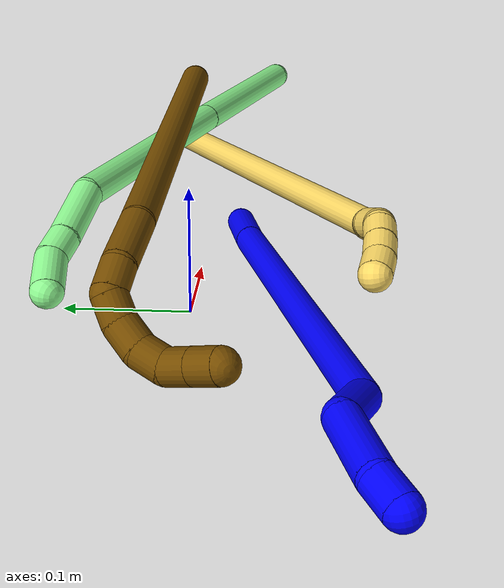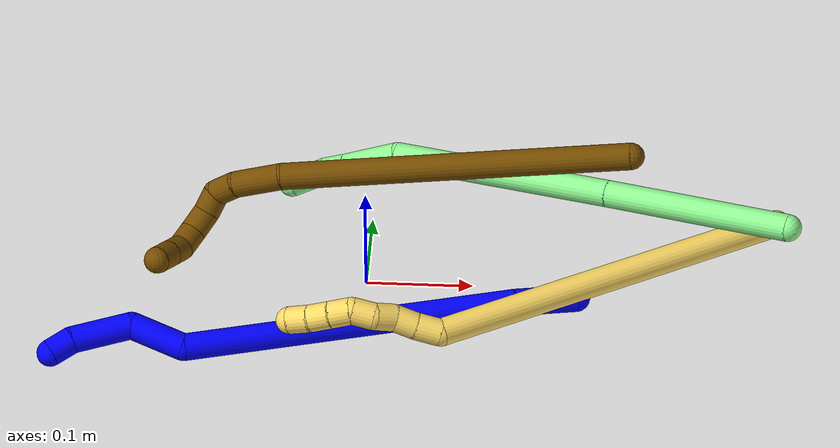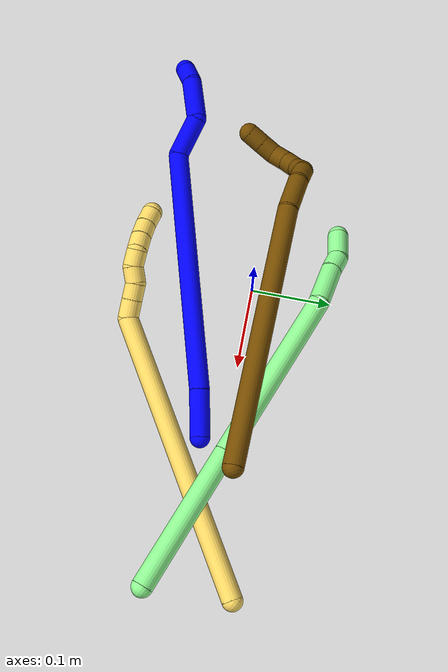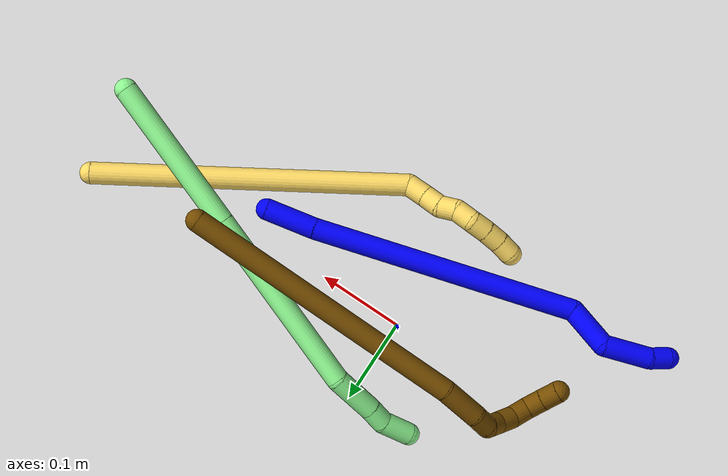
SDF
<sdf version="1.7">
 <world name="default">
  <model name="1">
   <static>0</static>
   <link name="1">
    <collision name="collision-cylinder-e_1_1_4">
     <pose>-0.028838 -0.005024 -0.002422 2.01999 -1.37977 -1.84038</pose>
     <geometry><cylinder><radius>0.0125</radius><length>0.058745</length></cylinder></geometry>
     <surface>
      <friction><ode><mu>1.16</mu><mu2>1.16</mu2><slip1>0</slip1><slip2>0</slip2></ode></friction>
      <contact><ode><kp>1e+06</kp><kd>1</kd><max_vel>0</max_vel><min_depth>0.001</min_depth></ode></contact>
     </surface>
    </collision>
    <visual name="visual-cylinder-e_1_1_4">
     <pose>-0.028838 -0.005024 -0.002422 2.01999 -1.37977 -1.84038</pose>
     <geometry><cylinder><radius>0.0125</radius><length>0.058745</length></cylinder></geometry>
     <material><ambient>0 0 1 1</ambient></material>
    </visual>
    <collision name="collision-cylinder-e_2_4_5">
     <pose>-0.206886 -0.047289 -0.023859 2.04288 -1.29756 -1.78314</pose>
     <geometry><cylinder><radius>0.0125</radius><length>0.309917</length></cylinder></geometry>
     <surface>
      <friction><ode><mu>1.16</mu><mu2>1.16</mu2><slip1>0</slip1><slip2>0</slip2></ode></friction>
      <contact><ode><kp>1e+06</kp><kd>1</kd><max_vel>0</max_vel><min_depth>0.001</min_depth></ode></contact>
     </surface>
    </collision>
    <visual name="visual-cylinder-e_2_4_5">
     <pose>-0.206886 -0.047289 -0.023859 2.04288 -1.29756 -1.78314</pose>
     <geometry><cylinder><radius>0.0125</radius><length>0.309917</length></cylinder></geometry>
     <material><ambient>0 0 1 1</ambient></material>
    </visual>
    <collision name="collision-cylinder-e_3_5_6">
     <pose>-0.380728 -0.078286 -0.036719 -0.792684 -1.22877 0.574147</pose>
     <geometry><cylinder><radius>0.0125</radius><length>0.052293</length></cylinder></geometry>
     <surface>
      <friction><ode><mu>1.16</mu><mu2>1.16</mu2><slip1>0</slip1><slip2>0</slip2></ode></friction>
      <contact><ode><kp>1e+06</kp><kd>1</kd><max_vel>0</max_vel><min_depth>0.001</min_depth></ode></contact>
     </surface>
    </collision>
    <visual name="visual-cylinder-e_3_5_6">
     <pose>-0.380728 -0.078286 -0.036719 -0.792684 -1.22877 0.574147</pose>
     <geometry><cylinder><radius>0.0125</radius><length>0.052293</length></cylinder></geometry>
     <material><ambient>0 0 1 1</ambient></material>
    </visual>
    <collision name="collision-cylinder-e_4_6_7">
     <pose>-0.431732 -0.078714 -0.037089 2.34496 -1.23061 -2.06762</pose>
     <geometry><cylinder><radius>0.0125</radius><length>0.055951</length></cylinder></geometry>
     <surface>
      <friction><ode><mu>1.16</mu><mu2>1.16</mu2><slip1>0</slip1><slip2>0</slip2></ode></friction>
      <contact><ode><kp>1e+06</kp><kd>1</kd><max_vel>0</max_vel><min_depth>0.001</min_depth></ode></contact>
     </surface>
    </collision>
    <visual name="visual-cylinder-e_4_6_7">
     <pose>-0.431732 -0.078714 -0.037089 2.34496 -1.23061 -2.06762</pose>
     <geometry><cylinder><radius>0.0125</radius><length>0.055951</length></cylinder></geometry>
     <material><ambient>0 0 1 1</ambient></material>
    </visual>
    <collision name="collision-cylinder-e_5_7_2">
     <pose>-0.46726 -0.090133 -0.04881 2.40143 -0.915582 -1.80755</pose>
     <geometry><cylinder><radius>0.0125</radius><length>0.023094</length></cylinder></geometry>
     <surface>
      <friction><ode><mu>1.16</mu><mu2>1.16</mu2><slip1>0</slip1><slip2>0</slip2></ode></friction>
      <contact><ode><kp>1e+06</kp><kd>1</kd><max_vel>0</max_vel><min_depth>0.001</min_depth></ode></contact>
     </surface>
    </collision>
    <visual name="visual-cylinder-e_5_7_2">
     <pose>-0.46726 -0.090133 -0.04881 2.40143 -0.915582 -1.80755</pose>
     <geometry><cylinder><radius>0.0125</radius><length>0.023094</length></cylinder></geometry>
     <material><ambient>0 0 1 1</ambient></material>
    </visual>
    <collision name="collision-sphere-2">
     <pose>-0.476416 -0.094878 -0.054005 0 -0 0</pose>
     <geometry><sphere><radius>0.0125</radius></sphere></geometry>
     <surface>
      <friction><ode><mu>1.16</mu><mu2>1.16</mu2><slip1>0</slip1><slip2>0</slip2></ode></friction>
      <contact><ode><kp>1e+06</kp><kd>1</kd><max_vel>0</max_vel><min_depth>0.001</min_depth></ode></contact>
     </surface>
    </collision>
    <visual name="visual-sphere-2">
     <pose>-0.476416 -0.094878 -0.054005 0 -0 0</pose>
     <geometry><sphere><radius>0.0125</radius></sphere></geometry>
     <material><ambient>0 0 1 1</ambient></material>
    </visual>
    <collision name="collision-sphere-7">
     <pose>-0.458105 -0.085388 -0.043615 0 -0 0</pose>
     <geometry><sphere><radius>0.0125</radius></sphere></geometry>
     <surface>
      <friction><ode><mu>1.16</mu><mu2>1.16</mu2><slip1>0</slip1><slip2>0</slip2></ode></friction>
      <contact><ode><kp>1e+06</kp><kd>1</kd><max_vel>0</max_vel><min_depth>0.001</min_depth></ode></contact>
     </surface>
    </collision>
    <visual name="visual-sphere-7">
     <pose>-0.458105 -0.085388 -0.043615 0 -0 0</pose>
     <geometry><sphere><radius>0.0125</radius></sphere></geometry>
     <material><ambient>0 0 1 1</ambient></material>
    </visual>
    <collision name="collision-sphere-6">
     <pose>-0.40536 -0.072039 -0.030563 0 -0 0</pose>
     <geometry><sphere><radius>0.0125</radius></sphere></geometry>
     <surface>
      <friction><ode><mu>1.16</mu><mu2>1.16</mu2><slip1>0</slip1><slip2>0</slip2></ode></friction>
      <contact><ode><kp>1e+06</kp><kd>1</kd><max_vel>0</max_vel><min_depth>0.001</min_depth></ode></contact>
     </surface>
    </collision>
    <visual name="visual-sphere-6">
     <pose>-0.40536 -0.072039 -0.030563 0 -0 0</pose>
     <geometry><sphere><radius>0.0125</radius></sphere></geometry>
     <material><ambient>0 0 1 1</ambient></material>
    </visual>
    <collision name="collision-sphere-5">
     <pose>-0.356096 -0.084532 -0.042875 0 -0 0</pose>
     <geometry><sphere><radius>0.0125</radius></sphere></geometry>
     <surface>
      <friction><ode><mu>1.16</mu><mu2>1.16</mu2><slip1>0</slip1><slip2>0</slip2></ode></friction>
      <contact><ode><kp>1e+06</kp><kd>1</kd><max_vel>0</max_vel><min_depth>0.001</min_depth></ode></contact>
     </surface>
    </collision>
    <visual name="visual-sphere-5">
     <pose>-0.356096 -0.084532 -0.042875 0 -0 0</pose>
     <geometry><sphere><radius>0.0125</radius></sphere></geometry>
     <material><ambient>0 0 1 1</ambient></material>
    </visual>
    <collision name="collision-sphere-1">
     <geometry><sphere><radius>0.0125</radius></sphere></geometry>
     <surface>
      <friction><ode><mu>1.16</mu><mu2>1.16</mu2><slip1>0</slip1><slip2>0</slip2></ode></friction>
      <contact><ode><kp>1e+06</kp><kd>1</kd><max_vel>0</max_vel><min_depth>0.001</min_depth></ode></contact>
     </surface>
    </collision>
    <visual name="visual-sphere-1">
     <geometry><sphere><radius>0.0125</radius></sphere></geometry>
     <material><ambient>0 0 1 1</ambient></material>
    </visual>
    <collision name="collision-sphere-4">
     <pose>-0.057677 -0.010047 -0.004843 0 -0 0</pose>
     <geometry><sphere><radius>0.0125</radius></sphere></geometry>
     <surface>
      <friction><ode><mu>1.16</mu><mu2>1.16</mu2><slip1>0</slip1><slip2>0</slip2></ode></friction>
      <contact><ode><kp>1e+06</kp><kd>1</kd><max_vel>0</max_vel><min_depth>0.001</min_depth></ode></contact>
     </surface>
    </collision>
    <visual name="visual-sphere-4">
     <pose>-0.057677 -0.010047 -0.004843 0 -0 0</pose>
     <geometry><sphere><radius>0.0125</radius></sphere></geometry>
     <material><ambient>0 0 1 1</ambient></material>
    </visual>
    <inertial>
     <pose>-0.241336 -0.051061 -0.025318 0 -0 0</pose>
     <mass>0.5</mass>
     <inertia>
      <ixx>-0.000844</ixx>
      <ixy>0</ixy>
      <ixz>0</ixz>
      <iyy>0.001705</iyy>
      <iyz>0</iyz>
      <izz>0.003049</izz>
     </inertia>
    </inertial>
   </link>
   <pose>0.197249 -0.028696 0.011488 -0.254847 0.059435 0.009468</pose>
  </model>
  <model name="5">
   <static>0</static>
   <link name="5">
    <collision name="collision-cylinder-e_1_1_4">
     <pose>-0.075916 -0.062741 0.14799 0.400985 -0.441233 -0.091089</pose>
     <geometry><cylinder><radius>0.0125</radius><length>0.355532</length></cylinder></geometry>
     <surface>
      <friction><ode><mu>1.16</mu><mu2>1.16</mu2><slip1>0</slip1><slip2>0</slip2></ode></friction>
      <contact><ode><kp>1e+06</kp><kd>1</kd><max_vel>0</max_vel><min_depth>0.001</min_depth></ode></contact>
     </surface>
    </collision>
    <visual name="visual-cylinder-e_1_1_4">
     <pose>-0.075916 -0.062741 0.14799 0.400985 -0.441233 -0.091089</pose>
     <geometry><cylinder><radius>0.0125</radius><length>0.355532</length></cylinder></geometry>
     <material><ambient>1 0.858824 0.4 1</ambient></material>
    </visual>
    <collision name="collision-cylinder-e_2_4_5">
     <pose>-0.162081 -0.127347 0.301387 0.33208 -1.06183 -0.19616</pose>
     <geometry><cylinder><radius>0.0125</radius><length>0.023475</length></cylinder></geometry>
     <surface>
      <friction><ode><mu>1.16</mu><mu2>1.16</mu2><slip1>0</slip1><slip2>0</slip2></ode></friction>
      <contact><ode><kp>1e+06</kp><kd>1</kd><max_vel>0</max_vel><min_depth>0.001</min_depth></ode></contact>
     </surface>
    </collision>
    <visual name="visual-cylinder-e_2_4_5">
     <pose>-0.162081 -0.127347 0.301387 0.33208 -1.06183 -0.19616</pose>
     <geometry><cylinder><radius>0.0125</radius><length>0.023475</length></cylinder></geometry>
     <material><ambient>1 0.858824 0.4 1</ambient></material>
    </visual>
    <collision name="collision-cylinder-e_3_5_6">
     <pose>-0.181593 -0.129681 0.311354 0.102504 -1.11117 -0.06367</pose>
     <geometry><cylinder><radius>0.0125</radius><length>0.020668</length></cylinder></geometry>
     <surface>
      <friction><ode><mu>1.16</mu><mu2>1.16</mu2><slip1>0</slip1><slip2>0</slip2></ode></friction>
      <contact><ode><kp>1e+06</kp><kd>1</kd><max_vel>0</max_vel><min_depth>0.001</min_depth></ode></contact>
     </surface>
    </collision>
    <visual name="visual-cylinder-e_3_5_6">
     <pose>-0.181593 -0.129681 0.311354 0.102504 -1.11117 -0.06367</pose>
     <geometry><cylinder><radius>0.0125</radius><length>0.020668</length></cylinder></geometry>
     <material><ambient>1 0.858824 0.4 1</ambient></material>
    </visual>
    <collision name="collision-cylinder-e_4_6_7">
     <pose>-0.197425 -0.131283 0.323372 0.150854 -0.716637 -0.056585</pose>
     <geometry><cylinder><radius>0.0125</radius><length>0.020007</length></cylinder></geometry>
     <surface>
      <friction><ode><mu>1.16</mu><mu2>1.16</mu2><slip1>0</slip1><slip2>0</slip2></ode></friction>
      <contact><ode><kp>1e+06</kp><kd>1</kd><max_vel>0</max_vel><min_depth>0.001</min_depth></ode></contact>
     </surface>
    </collision>
    <visual name="visual-cylinder-e_4_6_7">
     <pose>-0.197425 -0.131283 0.323372 0.150854 -0.716637 -0.056585</pose>
     <geometry><cylinder><radius>0.0125</radius><length>0.020007</length></cylinder></geometry>
     <material><ambient>1 0.858824 0.4 1</ambient></material>
    </visual>
    <collision name="collision-cylinder-e_5_7_8">
     <pose>-0.212958 -0.134367 0.335165 0.422698 -1.08302 -0.256683</pose>
     <geometry><cylinder><radius>0.0125</radius><length>0.02029</length></cylinder></geometry>
     <surface>
      <friction><ode><mu>1.16</mu><mu2>1.16</mu2><slip1>0</slip1><slip2>0</slip2></ode></friction>
      <contact><ode><kp>1e+06</kp><kd>1</kd><max_vel>0</max_vel><min_depth>0.001</min_depth></ode></contact>
     </surface>
    </collision>
    <visual name="visual-cylinder-e_5_7_8">
     <pose>-0.212958 -0.134367 0.335165 0.422698 -1.08302 -0.256683</pose>
     <geometry><cylinder><radius>0.0125</radius><length>0.02029</length></cylinder></geometry>
     <material><ambient>1 0.858824 0.4 1</ambient></material>
    </visual>
    <collision name="collision-cylinder-e_6_8_9">
     <pose>-0.228675 -0.142849 0.342963 1.08348 -0.740424 -0.458896</pose>
     <geometry><cylinder><radius>0.0125</radius><length>0.020027</length></cylinder></geometry>
     <surface>
      <friction><ode><mu>1.16</mu><mu2>1.16</mu2><slip1>0</slip1><slip2>0</slip2></ode></friction>
      <contact><ode><kp>1e+06</kp><kd>1</kd><max_vel>0</max_vel><min_depth>0.001</min_depth></ode></contact>
     </surface>
    </collision>
    <visual name="visual-cylinder-e_6_8_9">
     <pose>-0.228675 -0.142849 0.342963 1.08348 -0.740424 -0.458896</pose>
     <geometry><cylinder><radius>0.0125</radius><length>0.020027</length></cylinder></geometry>
     <material><ambient>1 0.858824 0.4 1</ambient></material>
    </visual>
    <collision name="collision-cylinder-e_7_9_10">
     <pose>-0.24223 -0.156147 0.349247 1.17555 -0.747785 -0.511425</pose>
     <geometry><cylinder><radius>0.0125</radius><length>0.02</length></cylinder></geometry>
     <surface>
      <friction><ode><mu>1.16</mu><mu2>1.16</mu2><slip1>0</slip1><slip2>0</slip2></ode></friction>
      <contact><ode><kp>1e+06</kp><kd>1</kd><max_vel>0</max_vel><min_depth>0.001</min_depth></ode></contact>
     </surface>
    </collision>
    <visual name="visual-cylinder-e_7_9_10">
     <pose>-0.24223 -0.156147 0.349247 1.17555 -0.747785 -0.511425</pose>
     <geometry><cylinder><radius>0.0125</radius><length>0.02</length></cylinder></geometry>
     <material><ambient>1 0.858824 0.4 1</ambient></material>
    </visual>
    <collision name="collision-cylinder-e_8_10_2">
     <pose>-0.256444 -0.169345 0.353987 1.28113 -0.835091 -0.638744</pose>
     <geometry><cylinder><radius>0.0125</radius><length>0.020001</length></cylinder></geometry>
     <surface>
      <friction><ode><mu>1.16</mu><mu2>1.16</mu2><slip1>0</slip1><slip2>0</slip2></ode></friction>
      <contact><ode><kp>1e+06</kp><kd>1</kd><max_vel>0</max_vel><min_depth>0.001</min_depth></ode></contact>
     </surface>
    </collision>
    <visual name="visual-cylinder-e_8_10_2">
     <pose>-0.256444 -0.169345 0.353987 1.28113 -0.835091 -0.638744</pose>
     <geometry><cylinder><radius>0.0125</radius><length>0.020001</length></cylinder></geometry>
     <material><ambient>1 0.858824 0.4 1</ambient></material>
    </visual>
    <collision name="collision-sphere-2">
     <pose>-0.263858 -0.175777 0.355904 0 -0 0</pose>
     <geometry><sphere><radius>0.0125</radius></sphere></geometry>
     <surface>
      <friction><ode><mu>1.16</mu><mu2>1.16</mu2><slip1>0</slip1><slip2>0</slip2></ode></friction>
      <contact><ode><kp>1e+06</kp><kd>1</kd><max_vel>0</max_vel><min_depth>0.001</min_depth></ode></contact>
     </surface>
    </collision>
    <visual name="visual-sphere-2">
     <pose>-0.263858 -0.175777 0.355904 0 -0 0</pose>
     <geometry><sphere><radius>0.0125</radius></sphere></geometry>
     <material><ambient>1 0.858824 0.4 1</ambient></material>
    </visual>
    <collision name="collision-sphere-10">
     <pose>-0.24903 -0.162914 0.35207 0 -0 0</pose>
     <geometry><sphere><radius>0.0125</radius></sphere></geometry>
     <surface>
      <friction><ode><mu>1.16</mu><mu2>1.16</mu2><slip1>0</slip1><slip2>0</slip2></ode></friction>
      <contact><ode><kp>1e+06</kp><kd>1</kd><max_vel>0</max_vel><min_depth>0.001</min_depth></ode></contact>
     </surface>
    </collision>
    <visual name="visual-sphere-10">
     <pose>-0.24903 -0.162914 0.35207 0 -0 0</pose>
     <geometry><sphere><radius>0.0125</radius></sphere></geometry>
     <material><ambient>1 0.858824 0.4 1</ambient></material>
    </visual>
    <collision name="collision-sphere-9">
     <pose>-0.23543 -0.14938 0.346424 0 -0 0</pose>
     <geometry><sphere><radius>0.0125</radius></sphere></geometry>
     <surface>
      <friction><ode><mu>1.16</mu><mu2>1.16</mu2><slip1>0</slip1><slip2>0</slip2></ode></friction>
      <contact><ode><kp>1e+06</kp><kd>1</kd><max_vel>0</max_vel><min_depth>0.001</min_depth></ode></contact>
     </surface>
    </collision>
    <visual name="visual-sphere-9">
     <pose>-0.23543 -0.14938 0.346424 0 -0 0</pose>
     <geometry><sphere><radius>0.0125</radius></sphere></geometry>
     <material><ambient>1 0.858824 0.4 1</ambient></material>
    </visual>
    <collision name="collision-sphere-4">
     <pose>-0.151832 -0.125482 0.295981 0 -0 0</pose>
     <geometry><sphere><radius>0.0125</radius></sphere></geometry>
     <surface>
      <friction><ode><mu>1.16</mu><mu2>1.16</mu2><slip1>0</slip1><slip2>0</slip2></ode></friction>
      <contact><ode><kp>1e+06</kp><kd>1</kd><max_vel>0</max_vel><min_depth>0.001</min_depth></ode></contact>
     </surface>
    </collision>
    <visual name="visual-sphere-4">
     <pose>-0.151832 -0.125482 0.295981 0 -0 0</pose>
     <geometry><sphere><radius>0.0125</radius></sphere></geometry>
     <material><ambient>1 0.858824 0.4 1</ambient></material>
    </visual>
    <collision name="collision-sphere-1">
     <geometry><sphere><radius>0.0125</radius></sphere></geometry>
     <surface>
      <friction><ode><mu>1.16</mu><mu2>1.16</mu2><slip1>0</slip1><slip2>0</slip2></ode></friction>
      <contact><ode><kp>1e+06</kp><kd>1</kd><max_vel>0</max_vel><min_depth>0.001</min_depth></ode></contact>
     </surface>
    </collision>
    <visual name="visual-sphere-1">
     <geometry><sphere><radius>0.0125</radius></sphere></geometry>
     <material><ambient>1 0.858824 0.4 1</ambient></material>
    </visual>
    <collision name="collision-sphere-8">
     <pose>-0.22192 -0.136318 0.339501 0 -0 0</pose>
     <geometry><sphere><radius>0.0125</radius></sphere></geometry>
     <surface>
      <friction><ode><mu>1.16</mu><mu2>1.16</mu2><slip1>0</slip1><slip2>0</slip2></ode></friction>
      <contact><ode><kp>1e+06</kp><kd>1</kd><max_vel>0</max_vel><min_depth>0.001</min_depth></ode></contact>
     </surface>
    </collision>
    <visual name="visual-sphere-8">
     <pose>-0.22192 -0.136318 0.339501 0 -0 0</pose>
     <geometry><sphere><radius>0.0125</radius></sphere></geometry>
     <material><ambient>1 0.858824 0.4 1</ambient></material>
    </visual>
    <collision name="collision-sphere-5">
     <pose>-0.172331 -0.129212 0.306794 0 -0 0</pose>
     <geometry><sphere><radius>0.0125</radius></sphere></geometry>
     <surface>
      <friction><ode><mu>1.16</mu><mu2>1.16</mu2><slip1>0</slip1><slip2>0</slip2></ode></friction>
      <contact><ode><kp>1e+06</kp><kd>1</kd><max_vel>0</max_vel><min_depth>0.001</min_depth></ode></contact>
     </surface>
    </collision>
    <visual name="visual-sphere-5">
     <pose>-0.172331 -0.129212 0.306794 0 -0 0</pose>
     <geometry><sphere><radius>0.0125</radius></sphere></geometry>
     <material><ambient>1 0.858824 0.4 1</ambient></material>
    </visual>
    <collision name="collision-sphere-6">
     <pose>-0.190854 -0.13015 0.315915 0 -0 0</pose>
     <geometry><sphere><radius>0.0125</radius></sphere></geometry>
     <surface>
      <friction><ode><mu>1.16</mu><mu2>1.16</mu2><slip1>0</slip1><slip2>0</slip2></ode></friction>
      <contact><ode><kp>1e+06</kp><kd>1</kd><max_vel>0</max_vel><min_depth>0.001</min_depth></ode></contact>
     </surface>
    </collision>
    <visual name="visual-sphere-6">
     <pose>-0.190854 -0.13015 0.315915 0 -0 0</pose>
     <geometry><sphere><radius>0.0125</radius></sphere></geometry>
     <material><ambient>1 0.858824 0.4 1</ambient></material>
    </visual>
    <collision name="collision-sphere-7">
     <pose>-0.203996 -0.132417 0.330829 0 -0 0</pose>
     <geometry><sphere><radius>0.0125</radius></sphere></geometry>
     <surface>
      <friction><ode><mu>1.16</mu><mu2>1.16</mu2><slip1>0</slip1><slip2>0</slip2></ode></friction>
      <contact><ode><kp>1e+06</kp><kd>1</kd><max_vel>0</max_vel><min_depth>0.001</min_depth></ode></contact>
     </surface>
    </collision>
    <visual name="visual-sphere-7">
     <pose>-0.203996 -0.132417 0.330829 0 -0 0</pose>
     <geometry><sphere><radius>0.0125</radius></sphere></geometry>
     <material><ambient>1 0.858824 0.4 1</ambient></material>
    </visual>
    <inertial>
     <pose>-0.114745 -0.0854 0.200658 0 -0 0</pose>
     <mass>0.5</mass>
     <inertia>
      <ixx>0.003059</ixx>
      <ixy>0</ixy>
      <ixz>0</ixz>
      <iyy>0.003188</iyy>
      <iyz>0</iyz>
      <izz>0.002972</izz>
     </inertia>
    </inertial>
   </link>
   <pose>0.380839 0.044287 0.051866 1.35492 0.366199 -0.550513</pose>
  </model>
  <model name="12">
   <static>0</static>
   <link name="12">
    <collision name="collision-cylinder-e_1_1_4">
     <pose>-0.08391 -0.032443 -0.135793 2.90707 -0.541163 -2.33839</pose>
     <geometry><cylinder><radius>0.0125</radius><length>0.325779</length></cylinder></geometry>
     <surface>
      <friction><ode><mu>1.16</mu><mu2>1.16</mu2><slip1>0</slip1><slip2>0</slip2></ode></friction>
      <contact><ode><kp>1e+06</kp><kd>1</kd><max_vel>0</max_vel><min_depth>0.001</min_depth></ode></contact>
     </surface>
    </collision>
    <visual name="visual-cylinder-e_1_1_4">
     <pose>-0.08391 -0.032443 -0.135793 2.90707 -0.541163 -2.33839</pose>
     <geometry><cylinder><radius>0.0125</radius><length>0.325779</length></cylinder></geometry>
     <material><ambient>0.466667 0.301961 0 1</ambient></material>
    </visual>
    <collision name="collision-cylinder-e_2_4_5">
     <pose>-0.183941 -0.067783 -0.288118 2.96809 -0.765243 -2.71594</pose>
     <geometry><cylinder><radius>0.0125</radius><length>0.046545</length></cylinder></geometry>
     <surface>
      <friction><ode><mu>1.16</mu><mu2>1.16</mu2><slip1>0</slip1><slip2>0</slip2></ode></friction>
      <contact><ode><kp>1e+06</kp><kd>1</kd><max_vel>0</max_vel><min_depth>0.001</min_depth></ode></contact>
     </surface>
    </collision>
    <visual name="visual-cylinder-e_2_4_5">
     <pose>-0.183941 -0.067783 -0.288118 2.96809 -0.765243 -2.71594</pose>
     <geometry><cylinder><radius>0.0125</radius><length>0.046545</length></cylinder></geometry>
     <material><ambient>0.466667 0.301961 0 1</ambient></material>
    </visual>
    <collision name="collision-cylinder-e_3_5_6">
     <pose>-0.209697 -0.070149 -0.31111 -3.05942 -0.978633 2.9875</pose>
     <geometry><cylinder><radius>0.0125</radius><length>0.023225</length></cylinder></geometry>
     <surface>
      <friction><ode><mu>1.16</mu><mu2>1.16</mu2><slip1>0</slip1><slip2>0</slip2></ode></friction>
      <contact><ode><kp>1e+06</kp><kd>1</kd><max_vel>0</max_vel><min_depth>0.001</min_depth></ode></contact>
     </surface>
    </collision>
    <visual name="visual-cylinder-e_3_5_6">
     <pose>-0.209697 -0.070149 -0.31111 -3.05942 -0.978633 2.9875</pose>
     <geometry><cylinder><radius>0.0125</radius><length>0.023225</length></cylinder></geometry>
     <material><ambient>0.466667 0.301961 0 1</ambient></material>
    </visual>
    <collision name="collision-cylinder-e_4_6_7">
     <pose>-0.224909 -0.062421 -0.322167 -2.13939 -0.578478 0.99537</pose>
     <geometry><cylinder><radius>0.0125</radius><length>0.020399</length></cylinder></geometry>
     <surface>
      <friction><ode><mu>1.16</mu><mu2>1.16</mu2><slip1>0</slip1><slip2>0</slip2></ode></friction>
      <contact><ode><kp>1e+06</kp><kd>1</kd><max_vel>0</max_vel><min_depth>0.001</min_depth></ode></contact>
     </surface>
    </collision>
    <visual name="visual-cylinder-e_4_6_7">
     <pose>-0.224909 -0.062421 -0.322167 -2.13939 -0.578478 0.99537</pose>
     <geometry><cylinder><radius>0.0125</radius><length>0.020399</length></cylinder></geometry>
     <material><ambient>0.466667 0.301961 0 1</ambient></material>
    </visual>
    <collision name="collision-cylinder-e_5_7_8">
     <pose>-0.233697 -0.047716 -0.334379 -2.36315 -0.291783 0.688019</pose>
     <geometry><cylinder><radius>0.0125</radius><length>0.02233</length></cylinder></geometry>
     <surface>
      <friction><ode><mu>1.16</mu><mu2>1.16</mu2><slip1>0</slip1><slip2>0</slip2></ode></friction>
      <contact><ode><kp>1e+06</kp><kd>1</kd><max_vel>0</max_vel><min_depth>0.001</min_depth></ode></contact>
     </surface>
    </collision>
    <visual name="visual-cylinder-e_5_7_8">
     <pose>-0.233697 -0.047716 -0.334379 -2.36315 -0.291783 0.688019</pose>
     <geometry><cylinder><radius>0.0125</radius><length>0.02233</length></cylinder></geometry>
     <material><ambient>0.466667 0.301961 0 1</ambient></material>
    </visual>
    <collision name="collision-cylinder-e_6_8_9">
     <pose>-0.236286 -0.033318 -0.349862 -2.42238 0.059522 -0.158041</pose>
     <geometry><cylinder><radius>0.0125</radius><length>0.020955</length></cylinder></geometry>
     <surface>
      <friction><ode><mu>1.16</mu><mu2>1.16</mu2><slip1>0</slip1><slip2>0</slip2></ode></friction>
      <contact><ode><kp>1e+06</kp><kd>1</kd><max_vel>0</max_vel><min_depth>0.001</min_depth></ode></contact>
     </surface>
    </collision>
    <visual name="visual-cylinder-e_6_8_9">
     <pose>-0.236286 -0.033318 -0.349862 -2.42238 0.059522 -0.158041</pose>
     <geometry><cylinder><radius>0.0125</radius><length>0.020955</length></cylinder></geometry>
     <material><ambient>0.466667 0.301961 0 1</ambient></material>
    </visual>
    <collision name="collision-cylinder-e_7_9_10">
     <pose>-0.23075 -0.023235 -0.366167 -2.77982 0.49866 -1.89586</pose>
     <geometry><cylinder><radius>0.0125</radius><length>0.020542</length></cylinder></geometry>
     <surface>
      <friction><ode><mu>1.16</mu><mu2>1.16</mu2><slip1>0</slip1><slip2>0</slip2></ode></friction>
      <contact><ode><kp>1e+06</kp><kd>1</kd><max_vel>0</max_vel><min_depth>0.001</min_depth></ode></contact>
     </surface>
    </collision>
    <visual name="visual-cylinder-e_7_9_10">
     <pose>-0.23075 -0.023235 -0.366167 -2.77982 0.49866 -1.89586</pose>
     <geometry><cylinder><radius>0.0125</radius><length>0.020542</length></cylinder></geometry>
     <material><ambient>0.466667 0.301961 0 1</ambient></material>
    </visual>
    <collision name="collision-cylinder-e_8_10_2">
     <pose>-0.221055 -0.017001 -0.382978 -2.79331 0.49262 -1.9205</pose>
     <geometry><cylinder><radius>0.0125</radius><length>0.020225</length></cylinder></geometry>
     <surface>
      <friction><ode><mu>1.16</mu><mu2>1.16</mu2><slip1>0</slip1><slip2>0</slip2></ode></friction>
      <contact><ode><kp>1e+06</kp><kd>1</kd><max_vel>0</max_vel><min_depth>0.001</min_depth></ode></contact>
     </surface>
    </collision>
    <visual name="visual-cylinder-e_8_10_2">
     <pose>-0.221055 -0.017001 -0.382978 -2.79331 0.49262 -1.9205</pose>
     <geometry><cylinder><radius>0.0125</radius><length>0.020225</length></cylinder></geometry>
     <material><ambient>0.466667 0.301961 0 1</ambient></material>
    </visual>
    <collision name="collision-sphere-2">
     <pose>-0.216273 -0.01396 -0.391353 0 -0 0</pose>
     <geometry><sphere><radius>0.0125</radius></sphere></geometry>
     <surface>
      <friction><ode><mu>1.16</mu><mu2>1.16</mu2><slip1>0</slip1><slip2>0</slip2></ode></friction>
      <contact><ode><kp>1e+06</kp><kd>1</kd><max_vel>0</max_vel><min_depth>0.001</min_depth></ode></contact>
     </surface>
    </collision>
    <visual name="visual-sphere-2">
     <pose>-0.216273 -0.01396 -0.391353 0 -0 0</pose>
     <geometry><sphere><radius>0.0125</radius></sphere></geometry>
     <material><ambient>0.466667 0.301961 0 1</ambient></material>
    </visual>
    <collision name="collision-sphere-10">
     <pose>-0.225838 -0.020042 -0.374603 0 -0 0</pose>
     <geometry><sphere><radius>0.0125</radius></sphere></geometry>
     <surface>
      <friction><ode><mu>1.16</mu><mu2>1.16</mu2><slip1>0</slip1><slip2>0</slip2></ode></friction>
      <contact><ode><kp>1e+06</kp><kd>1</kd><max_vel>0</max_vel><min_depth>0.001</min_depth></ode></contact>
     </surface>
    </collision>
    <visual name="visual-sphere-10">
     <pose>-0.225838 -0.020042 -0.374603 0 -0 0</pose>
     <geometry><sphere><radius>0.0125</radius></sphere></geometry>
     <material><ambient>0.466667 0.301961 0 1</ambient></material>
    </visual>
    <collision name="collision-sphere-9">
     <pose>-0.235662 -0.026427 -0.35773 0 -0 0</pose>
     <geometry><sphere><radius>0.0125</radius></sphere></geometry>
     <surface>
      <friction><ode><mu>1.16</mu><mu2>1.16</mu2><slip1>0</slip1><slip2>0</slip2></ode></friction>
      <contact><ode><kp>1e+06</kp><kd>1</kd><max_vel>0</max_vel><min_depth>0.001</min_depth></ode></contact>
     </surface>
    </collision>
    <visual name="visual-sphere-9">
     <pose>-0.235662 -0.026427 -0.35773 0 -0 0</pose>
     <geometry><sphere><radius>0.0125</radius></sphere></geometry>
     <material><ambient>0.466667 0.301961 0 1</ambient></material>
    </visual>
    <collision name="collision-sphere-4">
     <pose>-0.16782 -0.064886 -0.271585 0 -0 0</pose>
     <geometry><sphere><radius>0.0125</radius></sphere></geometry>
     <surface>
      <friction><ode><mu>1.16</mu><mu2>1.16</mu2><slip1>0</slip1><slip2>0</slip2></ode></friction>
      <contact><ode><kp>1e+06</kp><kd>1</kd><max_vel>0</max_vel><min_depth>0.001</min_depth></ode></contact>
     </surface>
    </collision>
    <visual name="visual-sphere-4">
     <pose>-0.16782 -0.064886 -0.271585 0 -0 0</pose>
     <geometry><sphere><radius>0.0125</radius></sphere></geometry>
     <material><ambient>0.466667 0.301961 0 1</ambient></material>
    </visual>
    <collision name="collision-sphere-1">
     <geometry><sphere><radius>0.0125</radius></sphere></geometry>
     <surface>
      <friction><ode><mu>1.16</mu><mu2>1.16</mu2><slip1>0</slip1><slip2>0</slip2></ode></friction>
      <contact><ode><kp>1e+06</kp><kd>1</kd><max_vel>0</max_vel><min_depth>0.001</min_depth></ode></contact>
     </surface>
    </collision>
    <visual name="visual-sphere-1">
     <geometry><sphere><radius>0.0125</radius></sphere></geometry>
     <material><ambient>0.466667 0.301961 0 1</ambient></material>
    </visual>
    <collision name="collision-sphere-8">
     <pose>-0.236909 -0.040208 -0.341993 0 -0 0</pose>
     <geometry><sphere><radius>0.0125</radius></sphere></geometry>
     <surface>
      <friction><ode><mu>1.16</mu><mu2>1.16</mu2><slip1>0</slip1><slip2>0</slip2></ode></friction>
      <contact><ode><kp>1e+06</kp><kd>1</kd><max_vel>0</max_vel><min_depth>0.001</min_depth></ode></contact>
     </surface>
    </collision>
    <visual name="visual-sphere-8">
     <pose>-0.236909 -0.040208 -0.341993 0 -0 0</pose>
     <geometry><sphere><radius>0.0125</radius></sphere></geometry>
     <material><ambient>0.466667 0.301961 0 1</ambient></material>
    </visual>
    <collision name="collision-sphere-5">
     <pose>-0.200062 -0.070681 -0.30465 0 -0 0</pose>
     <geometry><sphere><radius>0.0125</radius></sphere></geometry>
     <surface>
      <friction><ode><mu>1.16</mu><mu2>1.16</mu2><slip1>0</slip1><slip2>0</slip2></ode></friction>
      <contact><ode><kp>1e+06</kp><kd>1</kd><max_vel>0</max_vel><min_depth>0.001</min_depth></ode></contact>
     </surface>
    </collision>
    <visual name="visual-sphere-5">
     <pose>-0.200062 -0.070681 -0.30465 0 -0 0</pose>
     <geometry><sphere><radius>0.0125</radius></sphere></geometry>
     <material><ambient>0.466667 0.301961 0 1</ambient></material>
    </visual>
    <collision name="collision-sphere-6">
     <pose>-0.219332 -0.069617 -0.317569 0 -0 0</pose>
     <geometry><sphere><radius>0.0125</radius></sphere></geometry>
     <surface>
      <friction><ode><mu>1.16</mu><mu2>1.16</mu2><slip1>0</slip1><slip2>0</slip2></ode></friction>
      <contact><ode><kp>1e+06</kp><kd>1</kd><max_vel>0</max_vel><min_depth>0.001</min_depth></ode></contact>
     </surface>
    </collision>
    <visual name="visual-sphere-6">
     <pose>-0.219332 -0.069617 -0.317569 0 -0 0</pose>
     <geometry><sphere><radius>0.0125</radius></sphere></geometry>
     <material><ambient>0.466667 0.301961 0 1</ambient></material>
    </visual>
    <collision name="collision-sphere-7">
     <pose>-0.230485 -0.055225 -0.326766 0 -0 0</pose>
     <geometry><sphere><radius>0.0125</radius></sphere></geometry>
     <surface>
      <friction><ode><mu>1.16</mu><mu2>1.16</mu2><slip1>0</slip1><slip2>0</slip2></ode></friction>
      <contact><ode><kp>1e+06</kp><kd>1</kd><max_vel>0</max_vel><min_depth>0.001</min_depth></ode></contact>
     </surface>
    </collision>
    <visual name="visual-sphere-7">
     <pose>-0.230485 -0.055225 -0.326766 0 -0 0</pose>
     <geometry><sphere><radius>0.0125</radius></sphere></geometry>
     <material><ambient>0.466667 0.301961 0 1</ambient></material>
    </visual>
    <inertial>
     <pose>-0.129473 -0.038423 -0.203024 0 -0 0</pose>
     <mass>0.5</mass>
     <inertia>
      <ixx>-0.003533</ixx>
      <ixy>0</ixy>
      <ixz>0</ixz>
      <iyy>0.000426</iyy>
      <iyz>0</iyz>
      <izz>0.002042</izz>
     </inertia>
    </inertial>
   </link>
   <pose>0.243112 0.018583 0.14058 -1.7759 -0.817468 -0.923171</pose>
  </model>
  <model name="13">
   <static>0</static>
   <link name="13">
    <collision name="collision-cylinder-e_1_1_4">
     <pose>-0.084567 -0.008042 0.021361 0.360044 -1.30717 -0.276985</pose>
     <geometry><cylinder><radius>0.0125</radius><length>0.175187</length></cylinder></geometry>
     <surface>
      <friction><ode><mu>1.16</mu><mu2>1.16</mu2><slip1>0</slip1><slip2>0</slip2></ode></friction>
      <contact><ode><kp>1e+06</kp><kd>1</kd><max_vel>0</max_vel><min_depth>0.001</min_depth></ode></contact>
     </surface>
    </collision>
    <visual name="visual-cylinder-e_1_1_4">
     <pose>-0.084567 -0.008042 0.021361 0.360044 -1.30717 -0.276985</pose>
     <geometry><cylinder><radius>0.0125</radius><length>0.175187</length></cylinder></geometry>
     <material><ambient>0.564706 0.984314 0.572549 1</ambient></material>
    </visual>
    <collision name="collision-cylinder-e_2_4_5">
     <pose>-0.271975 -0.02717 0.068515 0.405989 -1.3043 -0.311793</pose>
     <geometry><cylinder><radius>0.0125</radius><length>0.213207</length></cylinder></geometry>
     <surface>
      <friction><ode><mu>1.16</mu><mu2>1.16</mu2><slip1>0</slip1><slip2>0</slip2></ode></friction>
      <contact><ode><kp>1e+06</kp><kd>1</kd><max_vel>0</max_vel><min_depth>0.001</min_depth></ode></contact>
     </surface>
    </collision>
    <visual name="visual-cylinder-e_2_4_5">
     <pose>-0.271975 -0.02717 0.068515 0.405989 -1.3043 -0.311793</pose>
     <geometry><cylinder><radius>0.0125</radius><length>0.213207</length></cylinder></geometry>
     <material><ambient>0.564706 0.984314 0.572549 1</ambient></material>
    </visual>
    <collision name="collision-cylinder-e_3_5_6">
     <pose>-0.396804 -0.048573 0.105536 0.743003 -0.964481 -0.402355</pose>
     <geometry><cylinder><radius>0.0125</radius><length>0.053516</length></cylinder></geometry>
     <surface>
      <friction><ode><mu>1.16</mu><mu2>1.16</mu2><slip1>0</slip1><slip2>0</slip2></ode></friction>
      <contact><ode><kp>1e+06</kp><kd>1</kd><max_vel>0</max_vel><min_depth>0.001</min_depth></ode></contact>
     </surface>
    </collision>
    <visual name="visual-cylinder-e_3_5_6">
     <pose>-0.396804 -0.048573 0.105536 0.743003 -0.964481 -0.402355</pose>
     <geometry><cylinder><radius>0.0125</radius><length>0.053516</length></cylinder></geometry>
     <material><ambient>0.564706 0.984314 0.572549 1</ambient></material>
    </visual>
    <collision name="collision-cylinder-e_4_6_7">
     <pose>-0.428567 -0.063655 0.120656 0.886286 -1.00899 -0.512605</pose>
     <geometry><cylinder><radius>0.0125</radius><length>0.023099</length></cylinder></geometry>
     <surface>
      <friction><ode><mu>1.16</mu><mu2>1.16</mu2><slip1>0</slip1><slip2>0</slip2></ode></friction>
      <contact><ode><kp>1e+06</kp><kd>1</kd><max_vel>0</max_vel><min_depth>0.001</min_depth></ode></contact>
     </surface>
    </collision>
    <visual name="visual-cylinder-e_4_6_7">
     <pose>-0.428567 -0.063655 0.120656 0.886286 -1.00899 -0.512605</pose>
     <geometry><cylinder><radius>0.0125</radius><length>0.023099</length></cylinder></geometry>
     <material><ambient>0.564706 0.984314 0.572549 1</ambient></material>
    </visual>
    <collision name="collision-cylinder-e_5_7_2">
     <pose>-0.450219 -0.074516 0.135853 0.494388 -0.746303 -0.196951</pose>
     <geometry><cylinder><radius>0.0125</radius><length>0.034991</length></cylinder></geometry>
     <surface>
      <friction><ode><mu>1.16</mu><mu2>1.16</mu2><slip1>0</slip1><slip2>0</slip2></ode></friction>
      <contact><ode><kp>1e+06</kp><kd>1</kd><max_vel>0</max_vel><min_depth>0.001</min_depth></ode></contact>
     </surface>
    </collision>
    <visual name="visual-cylinder-e_5_7_2">
     <pose>-0.450219 -0.074516 0.135853 0.494388 -0.746303 -0.196951</pose>
     <geometry><cylinder><radius>0.0125</radius><length>0.034991</length></cylinder></geometry>
     <material><ambient>0.564706 0.984314 0.572549 1</ambient></material>
    </visual>
    <collision name="collision-sphere-2">
     <pose>-0.462097 -0.080611 0.14716 0 -0 0</pose>
     <geometry><sphere><radius>0.0125</radius></sphere></geometry>
     <surface>
      <friction><ode><mu>1.16</mu><mu2>1.16</mu2><slip1>0</slip1><slip2>0</slip2></ode></friction>
      <contact><ode><kp>1e+06</kp><kd>1</kd><max_vel>0</max_vel><min_depth>0.001</min_depth></ode></contact>
     </surface>
    </collision>
    <visual name="visual-sphere-2">
     <pose>-0.462097 -0.080611 0.14716 0 -0 0</pose>
     <geometry><sphere><radius>0.0125</radius></sphere></geometry>
     <material><ambient>0.564706 0.984314 0.572549 1</ambient></material>
    </visual>
    <collision name="collision-sphere-7">
     <pose>-0.438341 -0.068421 0.124546 0 -0 0</pose>
     <geometry><sphere><radius>0.0125</radius></sphere></geometry>
     <surface>
      <friction><ode><mu>1.16</mu><mu2>1.16</mu2><slip1>0</slip1><slip2>0</slip2></ode></friction>
      <contact><ode><kp>1e+06</kp><kd>1</kd><max_vel>0</max_vel><min_depth>0.001</min_depth></ode></contact>
     </surface>
    </collision>
    <visual name="visual-sphere-7">
     <pose>-0.438341 -0.068421 0.124546 0 -0 0</pose>
     <geometry><sphere><radius>0.0125</radius></sphere></geometry>
     <material><ambient>0.564706 0.984314 0.572549 1</ambient></material>
    </visual>
    <collision name="collision-sphere-6">
     <pose>-0.418793 -0.058888 0.116766 0 -0 0</pose>
     <geometry><sphere><radius>0.0125</radius></sphere></geometry>
     <surface>
      <friction><ode><mu>1.16</mu><mu2>1.16</mu2><slip1>0</slip1><slip2>0</slip2></ode></friction>
      <contact><ode><kp>1e+06</kp><kd>1</kd><max_vel>0</max_vel><min_depth>0.001</min_depth></ode></contact>
     </surface>
    </collision>
    <visual name="visual-sphere-6">
     <pose>-0.418793 -0.058888 0.116766 0 -0 0</pose>
     <geometry><sphere><radius>0.0125</radius></sphere></geometry>
     <material><ambient>0.564706 0.984314 0.572549 1</ambient></material>
    </visual>
    <collision name="collision-sphere-5">
     <pose>-0.374816 -0.038258 0.094307 0 -0 0</pose>
     <geometry><sphere><radius>0.0125</radius></sphere></geometry>
     <surface>
      <friction><ode><mu>1.16</mu><mu2>1.16</mu2><slip1>0</slip1><slip2>0</slip2></ode></friction>
      <contact><ode><kp>1e+06</kp><kd>1</kd><max_vel>0</max_vel><min_depth>0.001</min_depth></ode></contact>
     </surface>
    </collision>
    <visual name="visual-sphere-5">
     <pose>-0.374816 -0.038258 0.094307 0 -0 0</pose>
     <geometry><sphere><radius>0.0125</radius></sphere></geometry>
     <material><ambient>0.564706 0.984314 0.572549 1</ambient></material>
    </visual>
    <collision name="collision-sphere-1">
     <geometry><sphere><radius>0.0125</radius></sphere></geometry>
     <surface>
      <friction><ode><mu>1.16</mu><mu2>1.16</mu2><slip1>0</slip1><slip2>0</slip2></ode></friction>
      <contact><ode><kp>1e+06</kp><kd>1</kd><max_vel>0</max_vel><min_depth>0.001</min_depth></ode></contact>
     </surface>
    </collision>
    <visual name="visual-sphere-1">
     <geometry><sphere><radius>0.0125</radius></sphere></geometry>
     <material><ambient>0.564706 0.984314 0.572549 1</ambient></material>
    </visual>
    <collision name="collision-sphere-4">
     <pose>-0.169135 -0.016083 0.042723 0 -0 0</pose>
     <geometry><sphere><radius>0.0125</radius></sphere></geometry>
     <surface>
      <friction><ode><mu>1.16</mu><mu2>1.16</mu2><slip1>0</slip1><slip2>0</slip2></ode></friction>
      <contact><ode><kp>1e+06</kp><kd>1</kd><max_vel>0</max_vel><min_depth>0.001</min_depth></ode></contact>
     </surface>
    </collision>
    <visual name="visual-sphere-4">
     <pose>-0.169135 -0.016083 0.042723 0 -0 0</pose>
     <geometry><sphere><radius>0.0125</radius></sphere></geometry>
     <material><ambient>0.564706 0.984314 0.572549 1</ambient></material>
    </visual>
    <inertial>
     <pose>-0.239381 -0.027758 0.063077 0 -0 0</pose>
     <mass>0.5</mass>
     <inertia>
      <ixx>0.000192</ixx>
      <ixy>0</ixy>
      <ixz>0</ixz>
      <iyy>0.001171</iyy>
      <iyz>0</iyz>
      <izz>0.00139</izz>
     </inertia>
    </inertial>
   </link>
   <pose>0.386441 -0.055622 0.119068 1.68613 0.049191 -0.597273</pose>
  </model>
 </world>
</sdf>
